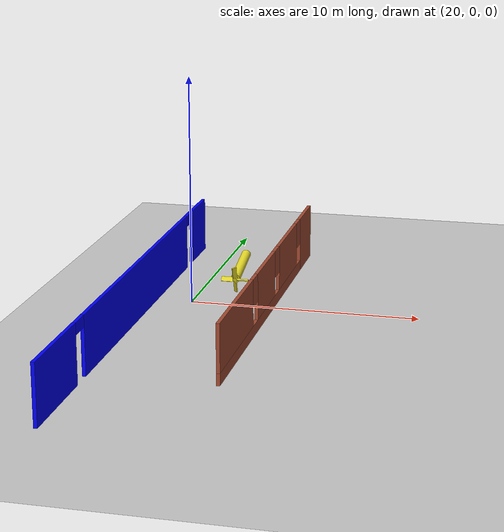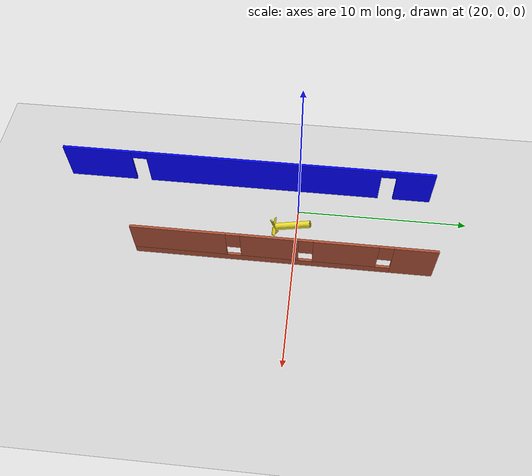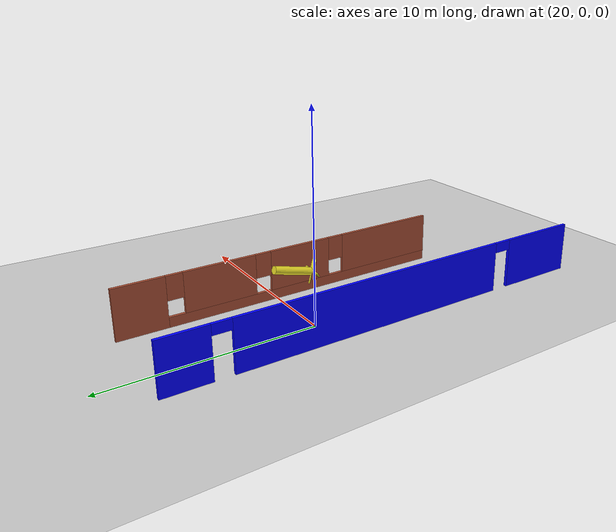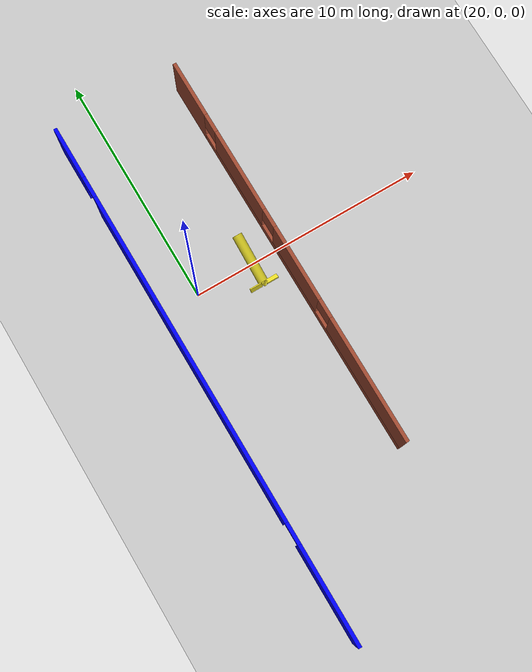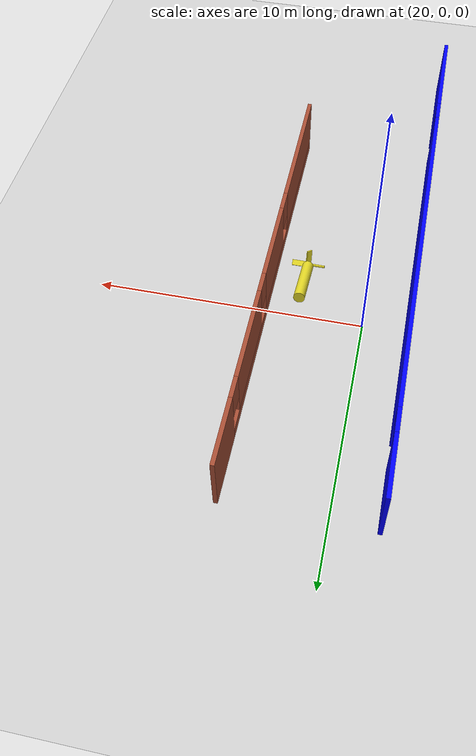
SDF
<sdf version="1.6">
 <world name="default">
  <model name="ground_plane">
   <static>1</static>
   <link name="link">
    <collision name="collision">
     <geometry><plane><normal>0 0 1</normal><size>100 100</size></plane></geometry>
     <surface><friction><ode><mu>100</mu><mu2>50</mu2></ode></friction></surface>
    </collision>
    <visual name="visual">
     <cast_shadows>0</cast_shadows>
     <geometry><plane><normal>0 0 1</normal><size>100 100</size></plane></geometry>
     <material>
      <script><uri>file://media/materials/scripts/gazebo.material</uri><name>Gazebo/Grey</name></script>
     </material>
    </visual>
   </link>
  </model>
  <model name="spiral_office">
   <link name="Wall_17">
    <pose>23.6145 -0.624368 0 0 0 -1.5707</pose>
    <visual name="Wall_17_Visual_0">
     <pose>-7.2888 0 1.25 0 -0 0</pose>
     <geometry><box><size>2.42239 0.15 2.5</size></box></geometry>
     <material>
      <script><uri>file://media/materials/scripts/gazebo.material</uri><name>Gazebo/Bricks</name></script>
      <ambient>1 1 1 1</ambient>
     </material>
     <meta><layer>0</layer></meta>
    </visual>
    <collision name="Wall_17_Collision_0">
     <geometry><box><size>2.42239 0.15 2.5</size></box></geometry>
     <pose>-7.2888 0 1.25 0 -0 0</pose>
    </collision>
    <visual name="Wall_17_Visual_1">
     <pose>1.2112 0 0.25 0 -0 0</pose>
     <geometry><box><size>14.5776 0.15 0.5</size></box></geometry>
     <material>
      <script><uri>file://media/materials/scripts/gazebo.material</uri><name>Gazebo/Bricks</name></script>
      <ambient>1 1 1 1</ambient>
     </material>
     <meta><layer>0</layer></meta>
    </visual>
    <collision name="Wall_17_Collision_1">
     <geometry><box><size>14.5776 0.15 0.5</size></box></geometry>
     <pose>1.2112 0 0.25 0 -0 0</pose>
    </collision>
    <visual name="Wall_17_Visual_2">
     <pose>-3.48164 0 1.5 0 -0 0</pose>
     <geometry><box><size>3.59193 0.15 2</size></box></geometry>
     <material>
      <script><uri>file://media/materials/scripts/gazebo.material</uri><name>Gazebo/Bricks</name></script>
      <ambient>1 1 1 1</ambient>
     </material>
     <meta><layer>0</layer></meta>
    </visual>
    <collision name="Wall_17_Collision_2">
     <geometry><box><size>3.59193 0.15 2</size></box></geometry>
     <pose>-3.48164 0 1.5 0 -0 0</pose>
    </collision>
    <visual name="Wall_17_Visual_3">
     <pose>0.737324 0 1.5 0 -0 0</pose>
     <geometry><box><size>3.246 0.15 2</size></box></geometry>
     <material>
      <script><uri>file://media/materials/scripts/gazebo.material</uri><name>Gazebo/Bricks</name></script>
      <ambient>1 1 1 1</ambient>
     </material>
     <meta><layer>0</layer></meta>
    </visual>
    <collision name="Wall_17_Collision_3">
     <geometry><box><size>3.246 0.15 2</size></box></geometry>
     <pose>0.737324 0 1.5 0 -0 0</pose>
    </collision>
    <visual name="Wall_17_Visual_4">
     <pose>5.83016 0 1.5 0 -0 0</pose>
     <geometry><box><size>5.33968 0.15 2</size></box></geometry>
     <material>
      <script><uri>file://media/materials/scripts/gazebo.material</uri><name>Gazebo/Bricks</name></script>
      <ambient>1 1 1 1</ambient>
     </material>
     <meta><layer>0</layer></meta>
    </visual>
    <collision name="Wall_17_Collision_4">
     <geometry><box><size>5.33968 0.15 2</size></box></geometry>
     <pose>5.83016 0 1.5 0 -0 0</pose>
    </collision>
    <visual name="Wall_17_Visual_5">
     <pose>-5.67761 0 1.9 0 -0 0</pose>
     <geometry><box><size>0.8 0.15 1.2</size></box></geometry>
     <material>
      <script><uri>file://media/materials/scripts/gazebo.material</uri><name>Gazebo/Bricks</name></script>
      <ambient>1 1 1 1</ambient>
     </material>
     <meta><layer>0</layer></meta>
    </visual>
    <collision name="Wall_17_Collision_5">
     <geometry><box><size>0.8 0.15 1.2</size></box></geometry>
     <pose>-5.67761 0 1.9 0 -0 0</pose>
    </collision>
    <visual name="Wall_17_Visual_6">
     <pose>-1.28568 0 1.9 0 -0 0</pose>
     <geometry><box><size>0.8 0.15 1.2</size></box></geometry>
     <material>
      <script><uri>file://media/materials/scripts/gazebo.material</uri><name>Gazebo/Bricks</name></script>
      <ambient>1 1 1 1</ambient>
     </material>
     <meta><layer>0</layer></meta>
    </visual>
    <collision name="Wall_17_Collision_6">
     <geometry><box><size>0.8 0.15 1.2</size></box></geometry>
     <pose>-1.28568 0 1.9 0 -0 0</pose>
    </collision>
    <visual name="Wall_17_Visual_7">
     <pose>2.76032 0 1.9 0 -0 0</pose>
     <geometry><box><size>0.8 0.15 1.2</size></box></geometry>
     <material>
      <script><uri>file://media/materials/scripts/gazebo.material</uri><name>Gazebo/Bricks</name></script>
      <ambient>1 1 1 1</ambient>
     </material>
     <meta><layer>0</layer></meta>
    </visual>
    <collision name="Wall_17_Collision_7">
     <geometry><box><size>0.8 0.15 1.2</size></box></geometry>
     <pose>2.76032 0 1.9 0 -0 0</pose>
    </collision>
   </link>
   <link name="Wall_98">
    <pose>18.3647 -3.24937 0 0 0 -1.5708</pose>
    <visual name="Wall_98_Visual_0">
     <pose>-9.99903 0 1.25 0 -0 0</pose>
     <geometry><box><size>2.25194 0.15 2.5</size></box></geometry>
     <material>
      <script><uri>file://media/materials/scripts/gazebo.material</uri><name>Gazebo/Grey</name></script>
      <ambient>0 0 1 1</ambient>
     </material>
     <meta><layer>0</layer></meta>
    </visual>
    <collision name="Wall_98_Collision_0">
     <geometry><box><size>2.25194 0.15 2.5</size></box></geometry>
     <pose>-9.99903 0 1.25 0 -0 0</pose>
    </collision>
    <visual name="Wall_98_Visual_1">
     <pose>-0.932708 0 1.25 0 -0 0</pose>
     <geometry><box><size>14.0807 0.15 2.5</size></box></geometry>
     <material>
      <script><uri>file://media/materials/scripts/gazebo.material</uri><name>Gazebo/Grey</name></script>
      <ambient>0 0 1 1</ambient>
     </material>
     <meta><layer>0</layer></meta>
    </visual>
    <collision name="Wall_98_Collision_1">
     <geometry><box><size>14.0807 0.15 2.5</size></box></geometry>
     <pose>-0.932708 0 1.25 0 -0 0</pose>
    </collision>
    <visual name="Wall_98_Visual_2">
     <pose>9.06632 0 1.25 0 -0 0</pose>
     <geometry><box><size>4.11736 0.15 2.5</size></box></geometry>
     <material>
      <script><uri>file://media/materials/scripts/gazebo.material</uri><name>Gazebo/Grey</name></script>
      <ambient>0 0 1 1</ambient>
     </material>
     <meta><layer>0</layer></meta>
    </visual>
    <collision name="Wall_98_Collision_2">
     <geometry><box><size>4.11736 0.15 2.5</size></box></geometry>
     <pose>9.06632 0 1.25 0 -0 0</pose>
    </collision>
    <visual name="Wall_98_Visual_3">
     <pose>-8.42306 0 2.25 0 -0 0</pose>
     <geometry><box><size>0.9 0.15 0.5</size></box></geometry>
     <material>
      <script><uri>file://media/materials/scripts/gazebo.material</uri><name>Gazebo/Grey</name></script>
      <ambient>0 0 1 1</ambient>
     </material>
     <meta><layer>0</layer></meta>
    </visual>
    <collision name="Wall_98_Collision_3">
     <geometry><box><size>0.9 0.15 0.5</size></box></geometry>
     <pose>-8.42306 0 2.25 0 -0 0</pose>
    </collision>
    <visual name="Wall_98_Visual_4">
     <pose>6.55764 0 2.25 0 -0 0</pose>
     <geometry><box><size>0.9 0.15 0.5</size></box></geometry>
     <material>
      <script><uri>file://media/materials/scripts/gazebo.material</uri><name>Gazebo/Grey</name></script>
      <ambient>0 0 1 1</ambient>
     </material>
     <meta><layer>0</layer></meta>
    </visual>
    <collision name="Wall_98_Collision_4">
     <geometry><box><size>0.9 0.15 0.5</size></box></geometry>
     <pose>6.55764 0 2.25 0 -0 0</pose>
    </collision>
   </link>
   <static>1</static>
  </model>
  <model name="submarine">
   <pose>22.2658 -0.170749 1.8685 1.82932 -0 0</pose>
   <link name="body">
    <inertial>
     <mass>251.327</mass>
     <inertia><ixx>86.2891</ixx><ixy>0</ixy><ixz>0</ixz><iyy>86.2891</iyy><iyz>0</iyz><izz>5.02655</izz></inertia>
    </inertial>
    <visual name="body_visual">
     <geometry><cylinder><radius>0.2</radius><length>2</length></cylinder></geometry>
     <material>
      <script><uri>file://media/materials/scripts/gazebo.material</uri><name>Gazebo/Yellow</name></script>
     </material>
    </visual>
    <collision name="body_collision">
     <geometry><cylinder><radius>0.2</radius><length>2</length></cylinder></geometry>
    </collision>
    <visual name="spacer_visual">
     <pose>0 0 1.05855 0 -0 0</pose>
     <geometry><cylinder><radius>0.0933402</radius><length>0.127211</length></cylinder></geometry>
     <material>
      <script><uri>file://media/materials/scripts/gazebo.material</uri><name>Gazebo/Yellow</name></script>
     </material>
    </visual>
   </link>
   <link name="propeller">
    <pose>0 0 1.09 3.14159 -0 0</pose>
    <inertial>
     <mass>21.82</mass>
     <inertia>
      <ixx>0.459994</ixx>
      <ixy>0</ixy>
      <ixz>0</ixz>
      <iyy>0.459994</iyy>
      <iyz>0</iyz>
      <izz>0.909167</izz>
     </inertia>
    </inertial>
    <visual name="blade1_visual">
     <pose>0.34334 0 0 0.785398 -0 0</pose>
     <geometry><box><size>0.5 0.2 0.05455</size></box></geometry>
     <material>
      <script><uri>file://media/materials/scripts/gazebo.material</uri><name>Gazebo/Yellow</name></script>
     </material>
    </visual>
    <collision name="blade1_collision">
     <pose>0.34334 0 0 0.785398 -0 0</pose>
     <geometry><box><size>0.5 0.2 0.05455</size></box></geometry>
    </collision>
    <visual name="blade2_visual">
     <pose>0 0.34334 0 0.785398 0 1.5708</pose>
     <geometry><box><size>0.5 0.2 0.05455</size></box></geometry>
     <material>
      <script><uri>file://media/materials/scripts/gazebo.material</uri><name>Gazebo/Yellow</name></script>
     </material>
    </visual>
    <collision name="blade2_collision">
     <pose>0 0.34334 0 0.785398 0 1.5708</pose>
     <geometry><box><size>0.5 0.2 0.05455</size></box></geometry>
    </collision>
    <visual name="blade3_visual">
     <pose>-0.34334 -0 0 -0.785398 0 0</pose>
     <geometry><box><size>0.5 0.2 0.05455</size></box></geometry>
     <material>
      <script><uri>file://media/materials/scripts/gazebo.material</uri><name>Gazebo/Yellow</name></script>
     </material>
    </visual>
    <collision name="blade3_collision">
     <pose>-0.34334 -0 0 -0.785398 0 0</pose>
     <geometry><box><size>0.5 0.2 0.05455</size></box></geometry>
    </collision>
    <visual name="blade4_visual">
     <pose>-0 -0.34334 0 -0.785398 -0 1.5708</pose>
     <geometry><box><size>0.5 0.2 0.05455</size></box></geometry>
     <material>
      <script><uri>file://media/materials/scripts/gazebo.material</uri><name>Gazebo/Yellow</name></script>
     </material>
    </visual>
    <collision name="blade4_collision">
     <pose>-0 -0.34334 0 -0.785398 -0 1.5708</pose>
     <geometry><box><size>0.5 0.2 0.05455</size></box></geometry>
    </collision>
   </link>
   <joint name="spinning_joint" type="revolute">
    <parent>body</parent>
    <child>propeller</child>
    <axis>
     <xyz>0 0 1</xyz>
     <use_parent_model_frame>1</use_parent_model_frame>
     <limit><lower>-1e+12</lower><upper>1e+12</upper><effort>-1</effort><velocity>-1</velocity></limit>
     <dynamics><spring_reference>0</spring_reference><spring_stiffness>0</spring_stiffness></dynamics>
    </axis>
   </joint>
   <plugin name="submarine_propeller_1" filename="libLiftDragPlugin.so">
    <air_density>1000</air_density>
    <cla>1.2535816618911175</cla>
    <cla_stall>-1.4326647564469914</cla_stall>
    <cda>0</cda>
    <cda_stall>1.4326647564469914</cda_stall>
    <alpha_stall>1.396</alpha_stall>
    <a0>0</a0>
    <area>0.27637</area>
    <upward>0 -0.7071067811865476 -0.7071067811865475</upward>
    <forward>0 -0.7071067811865475 0.7071067811865476</forward>
    <link_name>propeller</link_name>
    <cp>0.35 0 0</cp>
   </plugin>
   <plugin name="submarine_propeller_2" filename="libLiftDragPlugin.so">
    <air_density>1000</air_density>
    <cla>1.2535816618911175</cla>
    <cla_stall>-1.4326647564469914</cla_stall>
    <cda>0</cda>
    <cda_stall>1.4326647564469914</cda_stall>
    <alpha_stall>1.396</alpha_stall>
    <a0>0</a0>
    <area>0.27637</area>
    <upward>-0.7071067811865475 0 -0.7071067811865476</upward>
    <forward>-0.7071067811865476 0 0.7071067811865475</forward>
    <link_name>propeller</link_name>
    <cp>0 -0.35 0</cp>
   </plugin>
   <plugin name="submarine_propeller_3" filename="libLiftDragPlugin.so">
    <air_density>1000</air_density>
    <cla>1.2535816618911175</cla>
    <cla_stall>-1.4326647564469914</cla_stall>
    <cda>0</cda>
    <cda_stall>1.4326647564469914</cda_stall>
    <alpha_stall>1.396</alpha_stall>
    <a0>0</a0>
    <area>0.27637</area>
    <upward>0 0.7071067811865475 -0.7071067811865476</upward>
    <forward>0 -0.7071067811865476 -0.7071067811865475</forward>
    <link_name>propeller</link_name>
    <cp>-0.35 0 0</cp>
   </plugin>
   <plugin name="submarine_propeller_4" filename="libLiftDragPlugin.so">
    <air_density>1000</air_density>
    <cla>1.2535816618911175</cla>
    <cla_stall>-1.4326647564469914</cla_stall>
    <cda>0</cda>
    <cda_stall>1.4326647564469914</cda_stall>
    <alpha_stall>1.396</alpha_stall>
    <a0>0</a0>
    <area>0.27637</area>
    <upward>0.7071067811865476 0 -0.7071067811865475</upward>
    <forward>0.7071067811865475 0 0.7071067811865476</forward>
    <link_name>propeller</link_name>
    <cp>0 0.35 0</cp>
   </plugin>
   <plugin name="buoyancy" filename="libBuoyancyPlugin.so"><fluid_density>1000</fluid_density></plugin>
  </model>
 </world>
</sdf>
